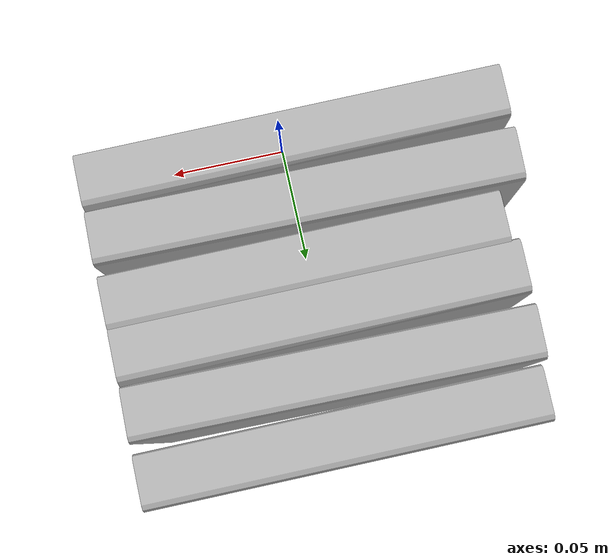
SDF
<?xml version="1.0" ?>
<sdf version="1.4">
  <model name="shelf2_book2_h2">
    <link name="body">
      <pose>0 0 0 0 0 0</pose>
      <inertial>
        <pose>  -0.000712   0.070207   0.005920 0 0 0</pose>
        <mass>0.5</mass>
        <inertia>
          <ixx>0.01</ixx>
          <ixy>0</ixy>
          <ixz>0</ixz>
          <iyy>0.01</iyy>
          <iyz>0</iyz>
          <izz>0.01</izz>
        </inertia>
      </inertial>
      <collision name="collision">
        <geometry>
          <mesh>
            <uri>model://bookshelf/shelf2_items/book2_h2/book2_h2.dae</uri>
          </mesh>
        </geometry>
      </collision>
      <visual name="visual">
        <geometry>
          <mesh>
            <uri>model://bookshelf/shelf2_items/book2_h2/book2_h2.dae</uri>
          </mesh>
        </geometry>
      </visual>
    </link>
  </model>
</sdf>
